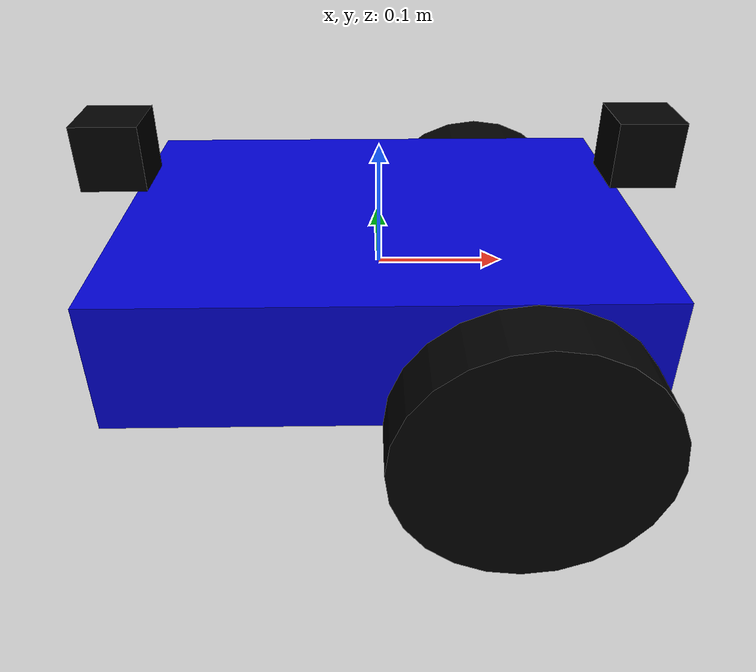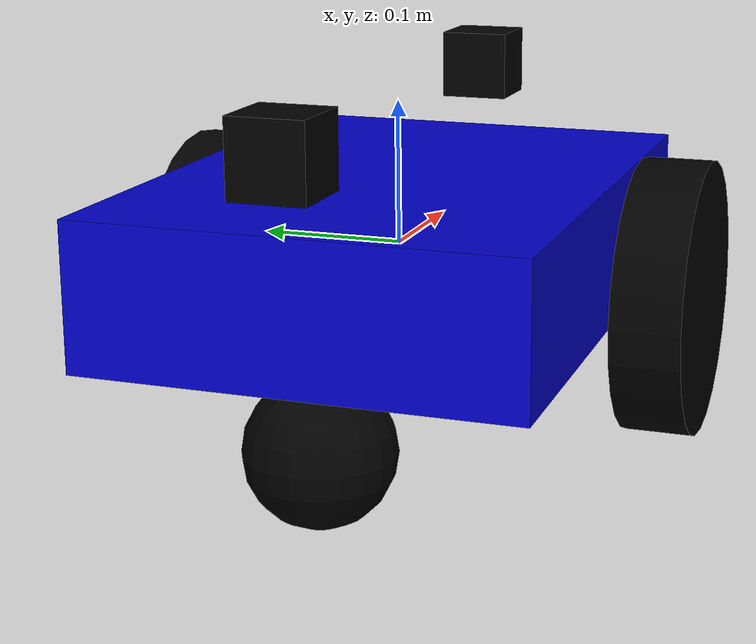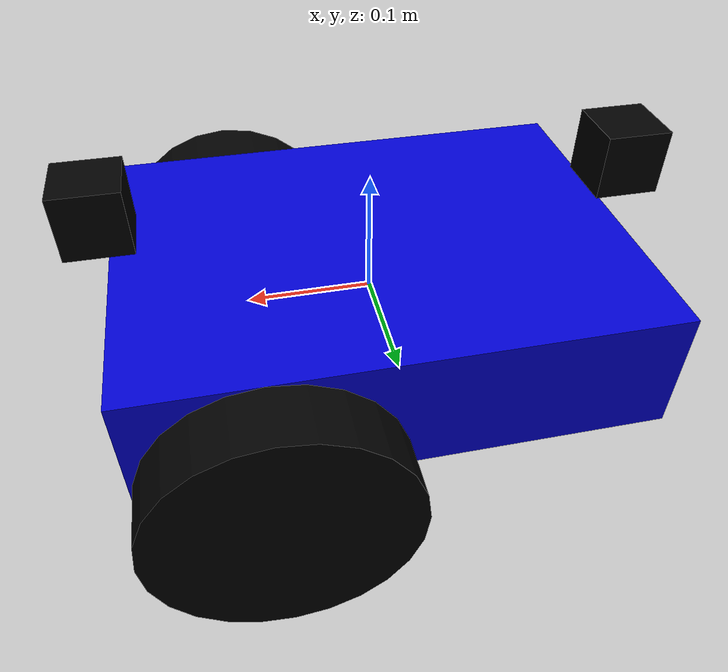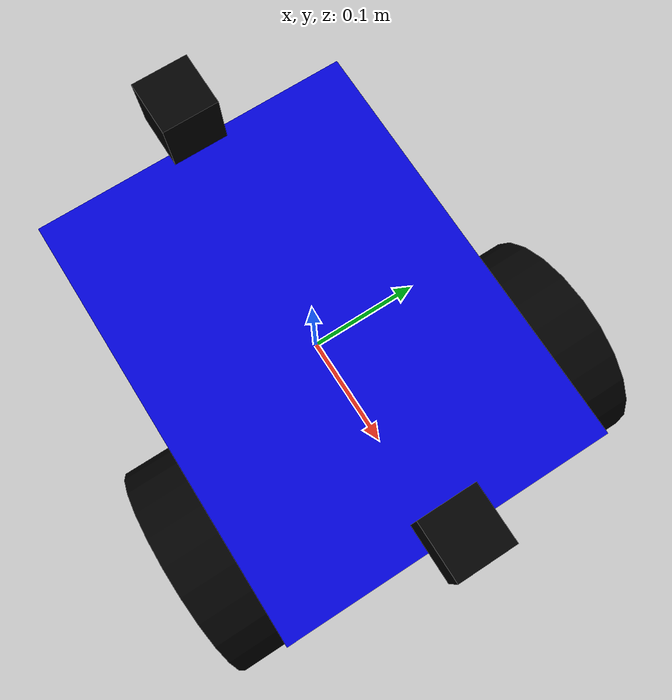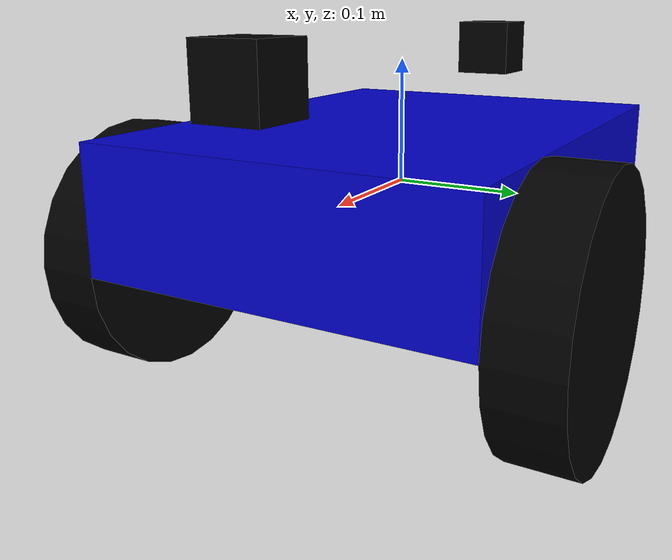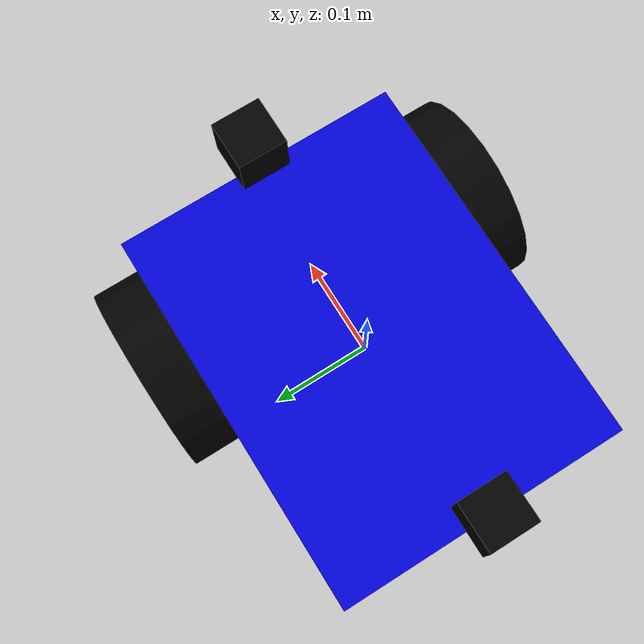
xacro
<?xml version="1.0"?>
<robot name="diffbot" xmlns:xacro="http://www.ros.org/wiki/xacro">

  <!-- Materials -->
  <material name="blue">
    <color rgba="0 0 0.8 1"/>
  </material>
  <material name="black">
    <color rgba="0 0 0 1"/>
  </material>

  <!-- Base Link (Chassis) -->
  <link name="base_link">
    <visual>
      <geometry>
        <box size="0.4 0.3 0.1"/>
      </geometry>
      <material name="blue"/>
    </visual>
    <collision>
      <geometry>
        <box size="0.4 0.3 0.1"/>
      </geometry>
    </collision>
    <inertial>
      <mass value="5.0"/>
      <inertia ixx="0.041" ixy="0.0" ixz="0.0" iyy="0.070" iyz="0.0" izz="0.104"/>
    </inertial>
  </link>

  <!-- Left Wheel -->
  <link name="left_wheel">
    <visual>
      <geometry>
        <cylinder length="0.05" radius="0.1"/>
      </geometry>
      <material name="black"/>
    </visual>
    <collision>
      <geometry>
        <cylinder length="0.05" radius="0.1"/>
      </geometry>
    </collision>
    <inertial>
      <mass value="1.0"/>
      <inertia ixx="0.0027" ixy="0.0" ixz="0.0" iyy="0.0027" iyz="0.0" izz="0.005"/>
    </inertial>
  </link>

  <joint name="left_wheel_joint" type="continuous">
    <parent link="base_link"/>
    <child link="left_wheel"/>
    <origin xyz="0.1 0.175 -0.05" rpy="-1.5708 0 0"/>
    <axis xyz="0 0 1"/>
  </joint>

  <!-- Right Wheel -->
  <link name="right_wheel">
    <visual>
      <geometry>
        <cylinder length="0.05" radius="0.1"/>
      </geometry>
      <material name="black"/>
    </visual>
    <collision>
      <geometry>
        <cylinder length="0.05" radius="0.1"/>
      </geometry>
    </collision>
    <inertial>
      <mass value="1.0"/>
      <inertia ixx="0.0027" ixy="0.0" ixz="0.0" iyy="0.0027" iyz="0.0" izz="0.005"/>
    </inertial>
  </link>

  <joint name="right_wheel_joint" type="continuous">
    <parent link="base_link"/>
    <child link="right_wheel"/>
    <origin xyz="0.1 -0.175 -0.05" rpy="-1.5708 0 0"/>
    <axis xyz="0 0 1"/>
  </joint>

  <!-- Caster -->
  <link name="caster">
    <visual>
      <geometry>
        <sphere radius="0.05"/>
      </geometry>
      <material name="black"/>
    </visual>
    <collision>
      <geometry>
        <sphere radius="0.05"/>
      </geometry>
    </collision>
    <inertial>
      <mass value="0.5"/>
      <inertia ixx="0.0005" ixy="0.0" ixz="0.0" iyy="0.0005" iyz="0.0" izz="0.0005"/>
    </inertial>
  </link>

  <joint name="caster_joint" type="fixed">
    <parent link="base_link"/>
    <child link="caster"/>
    <origin xyz="-0.15 0 -0.1" rpy="0 0 0"/>
  </joint>

  <!-- Front Camera -->
  <link name="front_camera_link">
    <visual>
      <geometry>
        <box size="0.05 0.05 0.05"/>
      </geometry>
      <material name="black"/>
    </visual>
  </link>

  <joint name="front_camera_joint" type="fixed">
    <parent link="base_link"/>
    <child link="front_camera_link"/>
    <origin xyz="0.2 0 0.1" rpy="0 0 0"/>
  </joint>

  <gazebo reference="front_camera_link">
    <sensor type="camera" name="wide_angle_camera_front">
      <update_rate>30.0</update_rate>
      <camera>
        <horizontal_fov>2.094</horizontal_fov>
        <image>
          <width>448</width>
          <height>448</height>
          <format>R8G8B8</format>
        </image>
        <clip>
          <near>0.1</near>
          <far>100</far>
        </clip>
      </camera>
      <plugin name="camera_controller" filename="libgazebo_ros_camera.so">
        <alwaysOn>true</alwaysOn>
        <updateRate>30.0</updateRate>
        <cameraName>/</cameraName>
        <imageTopicName>/wide_angle_camera_front/image_color_rect_resize</imageTopicName>
        <cameraInfoTopicName>/wide_angle_camera_front_resize/camera_info</cameraInfoTopicName>
        <frameName>front_camera_link</frameName>
      </plugin>
    </sensor>
  </gazebo>

  <!-- Rear Camera -->
  <link name="rear_camera_link">
    <visual>
      <geometry>
        <box size="0.05 0.05 0.05"/>
      </geometry>
      <material name="black"/>
    </visual>
  </link>

  <joint name="rear_camera_joint" type="fixed">
    <parent link="base_link"/>
    <child link="rear_camera_link"/>
    <origin xyz="-0.2 0 0.1" rpy="0 0 3.14159"/>
  </joint>

  <gazebo reference="rear_camera_link">
    <sensor type="camera" name="wide_angle_camera_rear">
      <update_rate>30.0</update_rate>
      <camera>
        <horizontal_fov>2.094</horizontal_fov>
        <image>
          <width>448</width>
          <height>448</height>
          <format>R8G8B8</format>
        </image>
        <clip>
          <near>0.1</near>
          <far>100</far>
        </clip>
      </camera>
      <plugin name="camera_controller" filename="libgazebo_ros_camera.so">
        <alwaysOn>true</alwaysOn>
        <updateRate>30.0</updateRate>
        <cameraName>/</cameraName>
        <imageTopicName>/wide_angle_camera_rear/image_color_rect_resize</imageTopicName>
        <cameraInfoTopicName>/wide_angle_camera_rear_resize/camera_info</cameraInfoTopicName>
        <frameName>rear_camera_link</frameName>
      </plugin>
    </sensor>
  </gazebo>

  <!-- Diff Drive Plugin -->
  <gazebo>
    <plugin name="differential_drive_controller" filename="libgazebo_ros_diff_drive.so">
      <alwaysOn>true</alwaysOn>
      <updateRate>50</updateRate>
      <leftJoint>left_wheel_joint</leftJoint>
      <rightJoint>right_wheel_joint</rightJoint>
      <wheelSeparation>0.35</wheelSeparation>
      <wheelDiameter>0.2</wheelDiameter>
      <wheelTorque>5</wheelTorque>
      <commandTopic>cmd_vel</commandTopic>
      <odometryTopic>odom</odometryTopic>
      <odometryFrame>odom</odometryFrame>
      <robotBaseFrame>base_link</robotBaseFrame>
      <publishWheelTF>true</publishWheelTF>
      <publishOdomTF>true</publishOdomTF>
      <publishWheelJointState>true</publishWheelJointState>
      <wheelAcceleration>1.0</wheelAcceleration>
    </plugin>
  </gazebo>

</robot>
